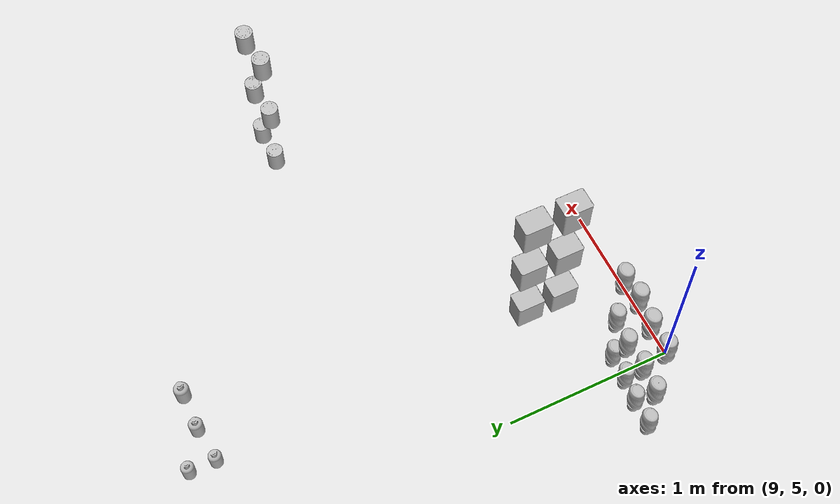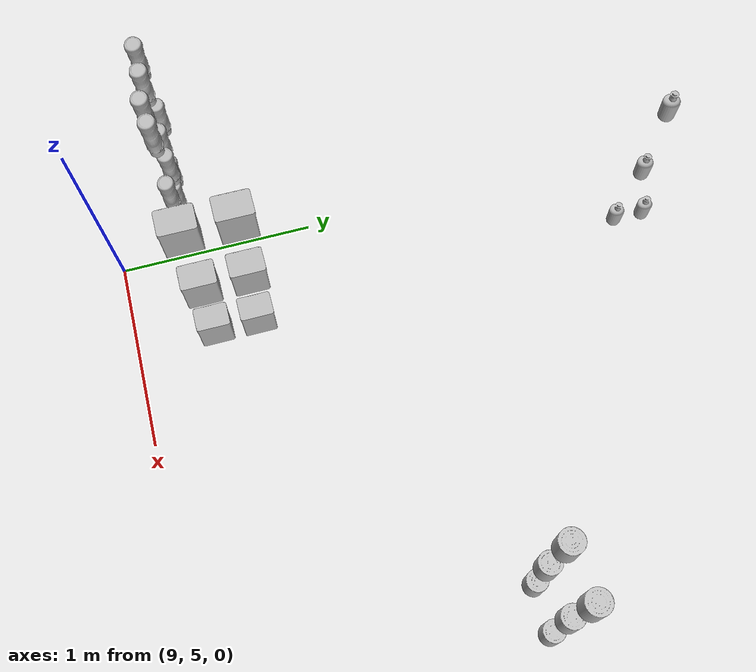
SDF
<sdf version="1.6">
 <world name="default">
  <model name="ketchup">
   <link name="link_2">
    <inertial>
     <mass>1</mass>
     <inertia>
      <ixx>0.166667</ixx>
      <ixy>0</ixy>
      <ixz>0</ixz>
      <iyy>0.166667</iyy>
      <iyz>0</iyz>
      <izz>0.166667</izz>
     </inertia>
    </inertial>
    <visual name="visual">
     <geometry><mesh><uri>model://ketchup/meshes/ketchup.dae</uri><scale>1.2 1.2 1.2</scale></mesh></geometry>
    </visual>
    <collision name="collision">
     <geometry><mesh><uri>model://ketchup/meshes/ketchup.dae</uri><scale>1.2 1.2 1.2</scale></mesh></geometry>
     <surface>
      <friction>
       <ode><mu>1</mu><mu2>1</mu2><fdir1>0 0 0</fdir1><slip1>0</slip1><slip2>0</slip2></ode>
       <torsional>
        <coefficient>1</coefficient>
        <patch_radius>0</patch_radius>
        <surface_radius>0</surface_radius>
        <use_patch_radius>1</use_patch_radius>
        <ode><slip>0</slip></ode>
       </torsional>
      </friction>
      <bounce><restitution_coefficient>0</restitution_coefficient><threshold>1e+06</threshold></bounce>
      <contact>
       <collide_without_contact>0</collide_without_contact>
       <collide_without_contact_bitmask>1</collide_without_contact_bitmask>
       <collide_bitmask>1</collide_bitmask>
       <ode>
        <soft_cfm>0</soft_cfm>
        <soft_erp>0.2</soft_erp>
        <kp>1e+13</kp>
        <kd>1</kd>
        <max_vel>0.01</max_vel>
        <min_depth>0</min_depth>
       </ode>
       <bullet>
        <split_impulse>1</split_impulse>
        <split_impulse_penetration_threshold>-0.01</split_impulse_penetration_threshold>
        <soft_cfm>0</soft_cfm>
        <soft_erp>0.2</soft_erp>
        <kp>1e+13</kp>
        <kd>1</kd>
       </bullet>
      </contact>
     </surface>
    </collision>
   </link>
   <static>1</static>
   <pose>9.04489 5.34478 0.101668 0 -0 0</pose>
  </model>
  <model name="ketchup_clone">
   <link name="link_2">
    <inertial>
     <mass>1</mass>
     <inertia>
      <ixx>0.166667</ixx>
      <ixy>0</ixy>
      <ixz>0</ixz>
      <iyy>0.166667</iyy>
      <iyz>0</iyz>
      <izz>0.166667</izz>
     </inertia>
    </inertial>
    <visual name="visual">
     <geometry><mesh><uri>model://ketchup/meshes/ketchup.dae</uri><scale>1.2 1.2 1.2</scale></mesh></geometry>
    </visual>
    <collision name="collision">
     <geometry><mesh><uri>model://ketchup/meshes/ketchup.dae</uri><scale>1.2 1.2 1.2</scale></mesh></geometry>
     <surface>
      <friction>
       <ode><mu>1</mu><mu2>1</mu2><fdir1>0 0 0</fdir1><slip1>0</slip1><slip2>0</slip2></ode>
       <torsional>
        <coefficient>1</coefficient>
        <patch_radius>0</patch_radius>
        <surface_radius>0</surface_radius>
        <use_patch_radius>1</use_patch_radius>
        <ode><slip>0</slip></ode>
       </torsional>
      </friction>
      <bounce><restitution_coefficient>0</restitution_coefficient><threshold>1e+06</threshold></bounce>
      <contact>
       <collide_without_contact>0</collide_without_contact>
       <collide_without_contact_bitmask>1</collide_without_contact_bitmask>
       <collide_bitmask>1</collide_bitmask>
       <ode>
        <soft_cfm>0</soft_cfm>
        <soft_erp>0.2</soft_erp>
        <kp>1e+13</kp>
        <kd>1</kd>
        <max_vel>0.01</max_vel>
        <min_depth>0</min_depth>
       </ode>
       <bullet>
        <split_impulse>1</split_impulse>
        <split_impulse_penetration_threshold>-0.01</split_impulse_penetration_threshold>
        <soft_cfm>0</soft_cfm>
        <soft_erp>0.2</soft_erp>
        <kp>1e+13</kp>
        <kd>1</kd>
       </bullet>
      </contact>
     </surface>
    </collision>
   </link>
   <static>1</static>
   <pose>8.89806 5.35298 0.101668 0 -0 0</pose>
  </model>
  <model name="ketchup_clone_0">
   <link name="link_2">
    <inertial>
     <mass>1</mass>
     <inertia>
      <ixx>0.166667</ixx>
      <ixy>0</ixy>
      <ixz>0</ixz>
      <iyy>0.166667</iyy>
      <iyz>0</iyz>
      <izz>0.166667</izz>
     </inertia>
    </inertial>
    <visual name="visual">
     <geometry><mesh><uri>model://ketchup/meshes/ketchup.dae</uri><scale>1.2 1.2 1.2</scale></mesh></geometry>
    </visual>
    <collision name="collision">
     <geometry><mesh><uri>model://ketchup/meshes/ketchup.dae</uri><scale>1.2 1.2 1.2</scale></mesh></geometry>
     <surface>
      <friction>
       <ode><mu>1</mu><mu2>1</mu2><fdir1>0 0 0</fdir1><slip1>0</slip1><slip2>0</slip2></ode>
       <torsional>
        <coefficient>1</coefficient>
        <patch_radius>0</patch_radius>
        <surface_radius>0</surface_radius>
        <use_patch_radius>1</use_patch_radius>
        <ode><slip>0</slip></ode>
       </torsional>
      </friction>
      <bounce><restitution_coefficient>0</restitution_coefficient><threshold>1e+06</threshold></bounce>
      <contact>
       <collide_without_contact>0</collide_without_contact>
       <collide_without_contact_bitmask>1</collide_without_contact_bitmask>
       <collide_bitmask>1</collide_bitmask>
       <ode>
        <soft_cfm>0</soft_cfm>
        <soft_erp>0.2</soft_erp>
        <kp>1e+13</kp>
        <kd>1</kd>
        <max_vel>0.01</max_vel>
        <min_depth>0</min_depth>
       </ode>
       <bullet>
        <split_impulse>1</split_impulse>
        <split_impulse_penetration_threshold>-0.01</split_impulse_penetration_threshold>
        <soft_cfm>0</soft_cfm>
        <soft_erp>0.2</soft_erp>
        <kp>1e+13</kp>
        <kd>1</kd>
       </bullet>
      </contact>
     </surface>
    </collision>
   </link>
   <static>1</static>
   <pose>8.75892 5.3715 0.101668 0 -0 0</pose>
  </model>
  <model name="ketchup_clone_1">
   <link name="link_2">
    <inertial>
     <mass>1</mass>
     <inertia>
      <ixx>0.166667</ixx>
      <ixy>0</ixy>
      <ixz>0</ixz>
      <iyy>0.166667</iyy>
      <iyz>0</iyz>
      <izz>0.166667</izz>
     </inertia>
    </inertial>
    <visual name="visual">
     <geometry><mesh><uri>model://ketchup/meshes/ketchup.dae</uri><scale>1.2 1.2 1.2</scale></mesh></geometry>
    </visual>
    <collision name="collision">
     <geometry><mesh><uri>model://ketchup/meshes/ketchup.dae</uri><scale>1.2 1.2 1.2</scale></mesh></geometry>
     <surface>
      <friction>
       <ode><mu>1</mu><mu2>1</mu2><fdir1>0 0 0</fdir1><slip1>0</slip1><slip2>0</slip2></ode>
       <torsional>
        <coefficient>1</coefficient>
        <patch_radius>0</patch_radius>
        <surface_radius>0</surface_radius>
        <use_patch_radius>1</use_patch_radius>
        <ode><slip>0</slip></ode>
       </torsional>
      </friction>
      <bounce><restitution_coefficient>0</restitution_coefficient><threshold>1e+06</threshold></bounce>
      <contact>
       <collide_without_contact>0</collide_without_contact>
       <collide_without_contact_bitmask>1</collide_without_contact_bitmask>
       <collide_bitmask>1</collide_bitmask>
       <ode>
        <soft_cfm>0</soft_cfm>
        <soft_erp>0.2</soft_erp>
        <kp>1e+13</kp>
        <kd>1</kd>
        <max_vel>0.01</max_vel>
        <min_depth>0</min_depth>
       </ode>
       <bullet>
        <split_impulse>1</split_impulse>
        <split_impulse_penetration_threshold>-0.01</split_impulse_penetration_threshold>
        <soft_cfm>0</soft_cfm>
        <soft_erp>0.2</soft_erp>
        <kp>1e+13</kp>
        <kd>1</kd>
       </bullet>
      </contact>
     </surface>
    </collision>
   </link>
   <static>1</static>
   <pose>8.60897 5.37754 0.101668 0 -0 0</pose>
  </model>
  <model name="ketchup_clone_2">
   <link name="link_2">
    <inertial>
     <mass>1</mass>
     <inertia>
      <ixx>0.166667</ixx>
      <ixy>0</ixy>
      <ixz>0</ixz>
      <iyy>0.166667</iyy>
      <iyz>0</iyz>
      <izz>0.166667</izz>
     </inertia>
    </inertial>
    <visual name="visual">
     <geometry><mesh><uri>model://ketchup/meshes/ketchup.dae</uri><scale>1.2 1.2 1.2</scale></mesh></geometry>
    </visual>
    <collision name="collision">
     <geometry><mesh><uri>model://ketchup/meshes/ketchup.dae</uri><scale>1.2 1.2 1.2</scale></mesh></geometry>
     <surface>
      <friction>
       <ode><mu>1</mu><mu2>1</mu2><fdir1>0 0 0</fdir1><slip1>0</slip1><slip2>0</slip2></ode>
       <torsional>
        <coefficient>1</coefficient>
        <patch_radius>0</patch_radius>
        <surface_radius>0</surface_radius>
        <use_patch_radius>1</use_patch_radius>
        <ode><slip>0</slip></ode>
       </torsional>
      </friction>
      <bounce><restitution_coefficient>0</restitution_coefficient><threshold>1e+06</threshold></bounce>
      <contact>
       <collide_without_contact>0</collide_without_contact>
       <collide_without_contact_bitmask>1</collide_without_contact_bitmask>
       <collide_bitmask>1</collide_bitmask>
       <ode>
        <soft_cfm>0</soft_cfm>
        <soft_erp>0.2</soft_erp>
        <kp>1e+13</kp>
        <kd>1</kd>
        <max_vel>0.01</max_vel>
        <min_depth>0</min_depth>
       </ode>
       <bullet>
        <split_impulse>1</split_impulse>
        <split_impulse_penetration_threshold>-0.01</split_impulse_penetration_threshold>
        <soft_cfm>0</soft_cfm>
        <soft_erp>0.2</soft_erp>
        <kp>1e+13</kp>
        <kd>1</kd>
       </bullet>
      </contact>
     </surface>
    </collision>
   </link>
   <static>1</static>
   <pose>9.05584 5.3791 0.539656 0 -0 0</pose>
  </model>
  <model name="ketchup_clone_2_clone">
   <link name="link_2">
    <inertial>
     <mass>1</mass>
     <inertia>
      <ixx>0.166667</ixx>
      <ixy>0</ixy>
      <ixz>0</ixz>
      <iyy>0.166667</iyy>
      <iyz>0</iyz>
      <izz>0.166667</izz>
     </inertia>
    </inertial>
    <visual name="visual">
     <geometry><mesh><uri>model://ketchup/meshes/ketchup.dae</uri><scale>1.2 1.2 1.2</scale></mesh></geometry>
    </visual>
    <collision name="collision">
     <geometry><mesh><uri>model://ketchup/meshes/ketchup.dae</uri><scale>1.2 1.2 1.2</scale></mesh></geometry>
     <surface>
      <friction>
       <ode><mu>1</mu><mu2>1</mu2><fdir1>0 0 0</fdir1><slip1>0</slip1><slip2>0</slip2></ode>
       <torsional>
        <coefficient>1</coefficient>
        <patch_radius>0</patch_radius>
        <surface_radius>0</surface_radius>
        <use_patch_radius>1</use_patch_radius>
        <ode><slip>0</slip></ode>
       </torsional>
      </friction>
      <bounce><restitution_coefficient>0</restitution_coefficient><threshold>1e+06</threshold></bounce>
      <contact>
       <collide_without_contact>0</collide_without_contact>
       <collide_without_contact_bitmask>1</collide_without_contact_bitmask>
       <collide_bitmask>1</collide_bitmask>
       <ode>
        <soft_cfm>0</soft_cfm>
        <soft_erp>0.2</soft_erp>
        <kp>1e+13</kp>
        <kd>1</kd>
        <max_vel>0.01</max_vel>
        <min_depth>0</min_depth>
       </ode>
       <bullet>
        <split_impulse>1</split_impulse>
        <split_impulse_penetration_threshold>-0.01</split_impulse_penetration_threshold>
        <soft_cfm>0</soft_cfm>
        <soft_erp>0.2</soft_erp>
        <kp>1e+13</kp>
        <kd>1</kd>
       </bullet>
      </contact>
     </surface>
    </collision>
   </link>
   <static>1</static>
   <pose>8.90333 5.40256 0.539656 0 -0 0</pose>
  </model>
  <model name="ketchup_clone_2_clone_0">
   <link name="link_2">
    <inertial>
     <mass>1</mass>
     <inertia>
      <ixx>0.166667</ixx>
      <ixy>0</ixy>
      <ixz>0</ixz>
      <iyy>0.166667</iyy>
      <iyz>0</iyz>
      <izz>0.166667</izz>
     </inertia>
    </inertial>
    <visual name="visual">
     <geometry><mesh><uri>model://ketchup/meshes/ketchup.dae</uri><scale>1.2 1.2 1.2</scale></mesh></geometry>
    </visual>
    <collision name="collision">
     <geometry><mesh><uri>model://ketchup/meshes/ketchup.dae</uri><scale>1.2 1.2 1.2</scale></mesh></geometry>
     <surface>
      <friction>
       <ode><mu>1</mu><mu2>1</mu2><fdir1>0 0 0</fdir1><slip1>0</slip1><slip2>0</slip2></ode>
       <torsional>
        <coefficient>1</coefficient>
        <patch_radius>0</patch_radius>
        <surface_radius>0</surface_radius>
        <use_patch_radius>1</use_patch_radius>
        <ode><slip>0</slip></ode>
       </torsional>
      </friction>
      <bounce><restitution_coefficient>0</restitution_coefficient><threshold>1e+06</threshold></bounce>
      <contact>
       <collide_without_contact>0</collide_without_contact>
       <collide_without_contact_bitmask>1</collide_without_contact_bitmask>
       <collide_bitmask>1</collide_bitmask>
       <ode>
        <soft_cfm>0</soft_cfm>
        <soft_erp>0.2</soft_erp>
        <kp>1e+13</kp>
        <kd>1</kd>
        <max_vel>0.01</max_vel>
        <min_depth>0</min_depth>
       </ode>
       <bullet>
        <split_impulse>1</split_impulse>
        <split_impulse_penetration_threshold>-0.01</split_impulse_penetration_threshold>
        <soft_cfm>0</soft_cfm>
        <soft_erp>0.2</soft_erp>
        <kp>1e+13</kp>
        <kd>1</kd>
       </bullet>
      </contact>
     </surface>
    </collision>
   </link>
   <static>1</static>
   <pose>8.75516 5.39467 0.539656 0 -0 0</pose>
  </model>
  <model name="ketchup_clone_2_clone_1">
   <link name="link_2">
    <inertial>
     <mass>1</mass>
     <inertia>
      <ixx>0.166667</ixx>
      <ixy>0</ixy>
      <ixz>0</ixz>
      <iyy>0.166667</iyy>
      <iyz>0</iyz>
      <izz>0.166667</izz>
     </inertia>
    </inertial>
    <visual name="visual">
     <geometry><mesh><uri>model://ketchup/meshes/ketchup.dae</uri><scale>1.2 1.2 1.2</scale></mesh></geometry>
    </visual>
    <collision name="collision">
     <geometry><mesh><uri>model://ketchup/meshes/ketchup.dae</uri><scale>1.2 1.2 1.2</scale></mesh></geometry>
     <surface>
      <friction>
       <ode><mu>1</mu><mu2>1</mu2><fdir1>0 0 0</fdir1><slip1>0</slip1><slip2>0</slip2></ode>
       <torsional>
        <coefficient>1</coefficient>
        <patch_radius>0</patch_radius>
        <surface_radius>0</surface_radius>
        <use_patch_radius>1</use_patch_radius>
        <ode><slip>0</slip></ode>
       </torsional>
      </friction>
      <bounce><restitution_coefficient>0</restitution_coefficient><threshold>1e+06</threshold></bounce>
      <contact>
       <collide_without_contact>0</collide_without_contact>
       <collide_without_contact_bitmask>1</collide_without_contact_bitmask>
       <collide_bitmask>1</collide_bitmask>
       <ode>
        <soft_cfm>0</soft_cfm>
        <soft_erp>0.2</soft_erp>
        <kp>1e+13</kp>
        <kd>1</kd>
        <max_vel>0.01</max_vel>
        <min_depth>0</min_depth>
       </ode>
       <bullet>
        <split_impulse>1</split_impulse>
        <split_impulse_penetration_threshold>-0.01</split_impulse_penetration_threshold>
        <soft_cfm>0</soft_cfm>
        <soft_erp>0.2</soft_erp>
        <kp>1e+13</kp>
        <kd>1</kd>
       </bullet>
      </contact>
     </surface>
    </collision>
   </link>
   <static>1</static>
   <pose>8.6079 5.40989 0.539656 0 -0 0</pose>
  </model>
  <model name="ketchup_clone_2_clone_2">
   <link name="link_2">
    <inertial>
     <mass>1</mass>
     <inertia>
      <ixx>0.166667</ixx>
      <ixy>0</ixy>
      <ixz>0</ixz>
      <iyy>0.166667</iyy>
      <iyz>0</iyz>
      <izz>0.166667</izz>
     </inertia>
    </inertial>
    <visual name="visual">
     <geometry><mesh><uri>model://ketchup/meshes/ketchup.dae</uri><scale>1.2 1.2 1.2</scale></mesh></geometry>
    </visual>
    <collision name="collision">
     <geometry><mesh><uri>model://ketchup/meshes/ketchup.dae</uri><scale>1.2 1.2 1.2</scale></mesh></geometry>
     <surface>
      <friction>
       <ode><mu>1</mu><mu2>1</mu2><fdir1>0 0 0</fdir1><slip1>0</slip1><slip2>0</slip2></ode>
       <torsional>
        <coefficient>1</coefficient>
        <patch_radius>0</patch_radius>
        <surface_radius>0</surface_radius>
        <use_patch_radius>1</use_patch_radius>
        <ode><slip>0</slip></ode>
       </torsional>
      </friction>
      <bounce><restitution_coefficient>0</restitution_coefficient><threshold>1e+06</threshold></bounce>
      <contact>
       <collide_without_contact>0</collide_without_contact>
       <collide_without_contact_bitmask>1</collide_without_contact_bitmask>
       <collide_bitmask>1</collide_bitmask>
       <ode>
        <soft_cfm>0</soft_cfm>
        <soft_erp>0.2</soft_erp>
        <kp>1e+13</kp>
        <kd>1</kd>
        <max_vel>0.01</max_vel>
        <min_depth>0</min_depth>
       </ode>
       <bullet>
        <split_impulse>1</split_impulse>
        <split_impulse_penetration_threshold>-0.01</split_impulse_penetration_threshold>
        <soft_cfm>0</soft_cfm>
        <soft_erp>0.2</soft_erp>
        <kp>1e+13</kp>
        <kd>1</kd>
       </bullet>
      </contact>
     </surface>
    </collision>
   </link>
   <static>1</static>
   <pose>9.05708 5.3979 0.975852 0 -0 0</pose>
  </model>
  <model name="ketchup_clone_2_clone_2_clone">
   <link name="link_2">
    <inertial>
     <mass>1</mass>
     <inertia>
      <ixx>0.166667</ixx>
      <ixy>0</ixy>
      <ixz>0</ixz>
      <iyy>0.166667</iyy>
      <iyz>0</iyz>
      <izz>0.166667</izz>
     </inertia>
    </inertial>
    <visual name="visual">
     <geometry><mesh><uri>model://ketchup/meshes/ketchup.dae</uri><scale>1.2 1.2 1.2</scale></mesh></geometry>
    </visual>
    <collision name="collision">
     <geometry><mesh><uri>model://ketchup/meshes/ketchup.dae</uri><scale>1.2 1.2 1.2</scale></mesh></geometry>
     <surface>
      <friction>
       <ode><mu>1</mu><mu2>1</mu2><fdir1>0 0 0</fdir1><slip1>0</slip1><slip2>0</slip2></ode>
       <torsional>
        <coefficient>1</coefficient>
        <patch_radius>0</patch_radius>
        <surface_radius>0</surface_radius>
        <use_patch_radius>1</use_patch_radius>
        <ode><slip>0</slip></ode>
       </torsional>
      </friction>
      <bounce><restitution_coefficient>0</restitution_coefficient><threshold>1e+06</threshold></bounce>
      <contact>
       <collide_without_contact>0</collide_without_contact>
       <collide_without_contact_bitmask>1</collide_without_contact_bitmask>
       <collide_bitmask>1</collide_bitmask>
       <ode>
        <soft_cfm>0</soft_cfm>
        <soft_erp>0.2</soft_erp>
        <kp>1e+13</kp>
        <kd>1</kd>
        <max_vel>0.01</max_vel>
        <min_depth>0</min_depth>
       </ode>
       <bullet>
        <split_impulse>1</split_impulse>
        <split_impulse_penetration_threshold>-0.01</split_impulse_penetration_threshold>
        <soft_cfm>0</soft_cfm>
        <soft_erp>0.2</soft_erp>
        <kp>1e+13</kp>
        <kd>1</kd>
       </bullet>
      </contact>
     </surface>
    </collision>
   </link>
   <static>1</static>
   <pose>8.93057 5.38857 0.975852 0 -0 0</pose>
  </model>
  <model name="ketchup_clone_2_clone_2_clone_0">
   <link name="link_2">
    <inertial>
     <mass>1</mass>
     <inertia>
      <ixx>0.166667</ixx>
      <ixy>0</ixy>
      <ixz>0</ixz>
      <iyy>0.166667</iyy>
      <iyz>0</iyz>
      <izz>0.166667</izz>
     </inertia>
    </inertial>
    <visual name="visual">
     <geometry><mesh><uri>model://ketchup/meshes/ketchup.dae</uri><scale>1.2 1.2 1.2</scale></mesh></geometry>
    </visual>
    <collision name="collision">
     <geometry><mesh><uri>model://ketchup/meshes/ketchup.dae</uri><scale>1.2 1.2 1.2</scale></mesh></geometry>
     <surface>
      <friction>
       <ode><mu>1</mu><mu2>1</mu2><fdir1>0 0 0</fdir1><slip1>0</slip1><slip2>0</slip2></ode>
       <torsional>
        <coefficient>1</coefficient>
        <patch_radius>0</patch_radius>
        <surface_radius>0</surface_radius>
        <use_patch_radius>1</use_patch_radius>
        <ode><slip>0</slip></ode>
       </torsional>
      </friction>
      <bounce><restitution_coefficient>0</restitution_coefficient><threshold>1e+06</threshold></bounce>
      <contact>
       <collide_without_contact>0</collide_without_contact>
       <collide_without_contact_bitmask>1</collide_without_contact_bitmask>
       <collide_bitmask>1</collide_bitmask>
       <ode>
        <soft_cfm>0</soft_cfm>
        <soft_erp>0.2</soft_erp>
        <kp>1e+13</kp>
        <kd>1</kd>
        <max_vel>0.01</max_vel>
        <min_depth>0</min_depth>
       </ode>
       <bullet>
        <split_impulse>1</split_impulse>
        <split_impulse_penetration_threshold>-0.01</split_impulse_penetration_threshold>
        <soft_cfm>0</soft_cfm>
        <soft_erp>0.2</soft_erp>
        <kp>1e+13</kp>
        <kd>1</kd>
       </bullet>
      </contact>
     </surface>
    </collision>
   </link>
   <static>1</static>
   <pose>8.78217 5.40767 0.975852 0 -0 0</pose>
  </model>
  <model name="ketchup_clone_2_clone_2_clone_1">
   <link name="link_2">
    <inertial>
     <mass>1</mass>
     <inertia>
      <ixx>0.166667</ixx>
      <ixy>0</ixy>
      <ixz>0</ixz>
      <iyy>0.166667</iyy>
      <iyz>0</iyz>
      <izz>0.166667</izz>
     </inertia>
    </inertial>
    <visual name="visual">
     <geometry><mesh><uri>model://ketchup/meshes/ketchup.dae</uri><scale>1.2 1.2 1.2</scale></mesh></geometry>
    </visual>
    <collision name="collision">
     <geometry><mesh><uri>model://ketchup/meshes/ketchup.dae</uri><scale>1.2 1.2 1.2</scale></mesh></geometry>
     <surface>
      <friction>
       <ode><mu>1</mu><mu2>1</mu2><fdir1>0 0 0</fdir1><slip1>0</slip1><slip2>0</slip2></ode>
       <torsional>
        <coefficient>1</coefficient>
        <patch_radius>0</patch_radius>
        <surface_radius>0</surface_radius>
        <use_patch_radius>1</use_patch_radius>
        <ode><slip>0</slip></ode>
       </torsional>
      </friction>
      <bounce><restitution_coefficient>0</restitution_coefficient><threshold>1e+06</threshold></bounce>
      <contact>
       <collide_without_contact>0</collide_without_contact>
       <collide_without_contact_bitmask>1</collide_without_contact_bitmask>
       <collide_bitmask>1</collide_bitmask>
       <ode>
        <soft_cfm>0</soft_cfm>
        <soft_erp>0.2</soft_erp>
        <kp>1e+13</kp>
        <kd>1</kd>
        <max_vel>0.01</max_vel>
        <min_depth>0</min_depth>
       </ode>
       <bullet>
        <split_impulse>1</split_impulse>
        <split_impulse_penetration_threshold>-0.01</split_impulse_penetration_threshold>
        <soft_cfm>0</soft_cfm>
        <soft_erp>0.2</soft_erp>
        <kp>1e+13</kp>
        <kd>1</kd>
       </bullet>
      </contact>
     </surface>
    </collision>
   </link>
   <static>1</static>
   <pose>8.63574 5.40934 0.975852 0 -0 0</pose>
  </model>
  <model name="cocoa">
   <link name="link_0">
    <inertial>
     <mass>1</mass>
     <inertia>
      <ixx>0.166667</ixx>
      <ixy>0</ixy>
      <ixz>0</ixz>
      <iyy>0.166667</iyy>
      <iyz>0</iyz>
      <izz>0.166667</izz>
     </inertia>
    </inertial>
    <visual name="visual">
     <geometry><mesh><uri>model://cocoa/meshes/cocoa.dae</uri><scale>1 1 1</scale></mesh></geometry>
    </visual>
    <collision name="collision">
     <geometry><mesh><uri>model://cocoa/meshes/cocoa.dae</uri><scale>1 1 1</scale></mesh></geometry>
     <surface>
      <friction>
       <ode><mu>1</mu><mu2>1</mu2><fdir1>0 0 0</fdir1><slip1>0</slip1><slip2>0</slip2></ode>
       <torsional>
        <coefficient>1</coefficient>
        <patch_radius>0</patch_radius>
        <surface_radius>0</surface_radius>
        <use_patch_radius>1</use_patch_radius>
        <ode><slip>0</slip></ode>
       </torsional>
      </friction>
      <bounce><restitution_coefficient>0</restitution_coefficient><threshold>1e+06</threshold></bounce>
      <contact>
       <collide_without_contact>0</collide_without_contact>
       <collide_without_contact_bitmask>1</collide_without_contact_bitmask>
       <collide_bitmask>1</collide_bitmask>
       <ode>
        <soft_cfm>0</soft_cfm>
        <soft_erp>0.2</soft_erp>
        <kp>1e+13</kp>
        <kd>1</kd>
        <max_vel>0.01</max_vel>
        <min_depth>0</min_depth>
       </ode>
       <bullet>
        <split_impulse>1</split_impulse>
        <split_impulse_penetration_threshold>-0.01</split_impulse_penetration_threshold>
        <soft_cfm>0</soft_cfm>
        <soft_erp>0.2</soft_erp>
        <kp>1e+13</kp>
        <kd>1</kd>
       </bullet>
      </contact>
     </surface>
    </collision>
   </link>
   <static>1</static>
   <pose>9.58144 5.33418 0.099729 0 -0 1.57282</pose>
  </model>
  <model name="cocoa_clone">
   <link name="link_0">
    <inertial>
     <mass>1</mass>
     <inertia>
      <ixx>0.166667</ixx>
      <ixy>0</ixy>
      <ixz>0</ixz>
      <iyy>0.166667</iyy>
      <iyz>0</iyz>
      <izz>0.166667</izz>
     </inertia>
    </inertial>
    <visual name="visual">
     <geometry><mesh><uri>model://cocoa/meshes/cocoa.dae</uri><scale>1 1 1</scale></mesh></geometry>
    </visual>
    <collision name="collision">
     <geometry><mesh><uri>model://cocoa/meshes/cocoa.dae</uri><scale>1 1 1</scale></mesh></geometry>
     <surface>
      <friction>
       <ode><mu>1</mu><mu2>1</mu2><fdir1>0 0 0</fdir1><slip1>0</slip1><slip2>0</slip2></ode>
       <torsional>
        <coefficient>1</coefficient>
        <patch_radius>0</patch_radius>
        <surface_radius>0</surface_radius>
        <use_patch_radius>1</use_patch_radius>
        <ode><slip>0</slip></ode>
       </torsional>
      </friction>
      <bounce><restitution_coefficient>0</restitution_coefficient><threshold>1e+06</threshold></bounce>
      <contact>
       <collide_without_contact>0</collide_without_contact>
       <collide_without_contact_bitmask>1</collide_without_contact_bitmask>
       <collide_bitmask>1</collide_bitmask>
       <ode>
        <soft_cfm>0</soft_cfm>
        <soft_erp>0.2</soft_erp>
        <kp>1e+13</kp>
        <kd>1</kd>
        <max_vel>0.01</max_vel>
        <min_depth>0</min_depth>
       </ode>
       <bullet>
        <split_impulse>1</split_impulse>
        <split_impulse_penetration_threshold>-0.01</split_impulse_penetration_threshold>
        <soft_cfm>0</soft_cfm>
        <soft_erp>0.2</soft_erp>
        <kp>1e+13</kp>
        <kd>1</kd>
       </bullet>
      </contact>
     </surface>
    </collision>
   </link>
   <static>1</static>
   <pose>9.58308 5.54919 0.101324 0 -0 1.57282</pose>
  </model>
  <model name="cocoa_clone_0">
   <link name="link_0">
    <inertial>
     <mass>1</mass>
     <inertia>
      <ixx>0.166667</ixx>
      <ixy>0</ixy>
      <ixz>0</ixz>
      <iyy>0.166667</iyy>
      <iyz>0</iyz>
      <izz>0.166667</izz>
     </inertia>
    </inertial>
    <visual name="visual">
     <geometry><mesh><uri>model://cocoa/meshes/cocoa.dae</uri><scale>1 1 1</scale></mesh></geometry>
    </visual>
    <collision name="collision">
     <geometry><mesh><uri>model://cocoa/meshes/cocoa.dae</uri><scale>1 1 1</scale></mesh></geometry>
     <surface>
      <friction>
       <ode><mu>1</mu><mu2>1</mu2><fdir1>0 0 0</fdir1><slip1>0</slip1><slip2>0</slip2></ode>
       <torsional>
        <coefficient>1</coefficient>
        <patch_radius>0</patch_radius>
        <surface_radius>0</surface_radius>
        <use_patch_radius>1</use_patch_radius>
        <ode><slip>0</slip></ode>
       </torsional>
      </friction>
      <bounce><restitution_coefficient>0</restitution_coefficient><threshold>1e+06</threshold></bounce>
      <contact>
       <collide_without_contact>0</collide_without_contact>
       <collide_without_contact_bitmask>1</collide_without_contact_bitmask>
       <collide_bitmask>1</collide_bitmask>
       <ode>
        <soft_cfm>0</soft_cfm>
        <soft_erp>0.2</soft_erp>
        <kp>1e+13</kp>
        <kd>1</kd>
        <max_vel>0.01</max_vel>
        <min_depth>0</min_depth>
       </ode>
       <bullet>
        <split_impulse>1</split_impulse>
        <split_impulse_penetration_threshold>-0.01</split_impulse_penetration_threshold>
        <soft_cfm>0</soft_cfm>
        <soft_erp>0.2</soft_erp>
        <kp>1e+13</kp>
        <kd>1</kd>
       </bullet>
      </contact>
     </surface>
    </collision>
   </link>
   <static>1</static>
   <pose>9.58715 5.34555 0.528717 0 -0 1.57282</pose>
  </model>
  <model name="cocoa_clone_0_clone">
   <link name="link_0">
    <inertial>
     <mass>1</mass>
     <inertia>
      <ixx>0.166667</ixx>
      <ixy>0</ixy>
      <ixz>0</ixz>
      <iyy>0.166667</iyy>
      <iyz>0</iyz>
      <izz>0.166667</izz>
     </inertia>
    </inertial>
    <visual name="visual">
     <geometry><mesh><uri>model://cocoa/meshes/cocoa.dae</uri><scale>1 1 1</scale></mesh></geometry>
    </visual>
    <collision name="collision">
     <geometry><mesh><uri>model://cocoa/meshes/cocoa.dae</uri><scale>1 1 1</scale></mesh></geometry>
     <surface>
      <friction>
       <ode><mu>1</mu><mu2>1</mu2><fdir1>0 0 0</fdir1><slip1>0</slip1><slip2>0</slip2></ode>
       <torsional>
        <coefficient>1</coefficient>
        <patch_radius>0</patch_radius>
        <surface_radius>0</surface_radius>
        <use_patch_radius>1</use_patch_radius>
        <ode><slip>0</slip></ode>
       </torsional>
      </friction>
      <bounce><restitution_coefficient>0</restitution_coefficient><threshold>1e+06</threshold></bounce>
      <contact>
       <collide_without_contact>0</collide_without_contact>
       <collide_without_contact_bitmask>1</collide_without_contact_bitmask>
       <collide_bitmask>1</collide_bitmask>
       <ode>
        <soft_cfm>0</soft_cfm>
        <soft_erp>0.2</soft_erp>
        <kp>1e+13</kp>
        <kd>1</kd>
        <max_vel>0.01</max_vel>
        <min_depth>0</min_depth>
       </ode>
       <bullet>
        <split_impulse>1</split_impulse>
        <split_impulse_penetration_threshold>-0.01</split_impulse_penetration_threshold>
        <soft_cfm>0</soft_cfm>
        <soft_erp>0.2</soft_erp>
        <kp>1e+13</kp>
        <kd>1</kd>
       </bullet>
      </contact>
     </surface>
    </collision>
   </link>
   <static>1</static>
   <pose>9.58377 5.56516 0.528717 0 -0 1.57282</pose>
  </model>
  <model name="cocoa_clone_0_clone_0">
   <link name="link_0">
    <inertial>
     <mass>1</mass>
     <inertia>
      <ixx>0.166667</ixx>
      <ixy>0</ixy>
      <ixz>0</ixz>
      <iyy>0.166667</iyy>
      <iyz>0</iyz>
      <izz>0.166667</izz>
     </inertia>
    </inertial>
    <visual name="visual">
     <geometry><mesh><uri>model://cocoa/meshes/cocoa.dae</uri><scale>1 1 1</scale></mesh></geometry>
    </visual>
    <collision name="collision">
     <geometry><mesh><uri>model://cocoa/meshes/cocoa.dae</uri><scale>1 1 1</scale></mesh></geometry>
     <surface>
      <friction>
       <ode><mu>1</mu><mu2>1</mu2><fdir1>0 0 0</fdir1><slip1>0</slip1><slip2>0</slip2></ode>
       <torsional>
        <coefficient>1</coefficient>
        <patch_radius>0</patch_radius>
        <surface_radius>0</surface_radius>
        <use_patch_radius>1</use_patch_radius>
        <ode><slip>0</slip></ode>
       </torsional>
      </friction>
      <bounce><restitution_coefficient>0</restitution_coefficient><threshold>1e+06</threshold></bounce>
      <contact>
       <collide_without_contact>0</collide_without_contact>
       <collide_without_contact_bitmask>1</collide_without_contact_bitmask>
       <collide_bitmask>1</collide_bitmask>
       <ode>
        <soft_cfm>0</soft_cfm>
        <soft_erp>0.2</soft_erp>
        <kp>1e+13</kp>
        <kd>1</kd>
        <max_vel>0.01</max_vel>
        <min_depth>0</min_depth>
       </ode>
       <bullet>
        <split_impulse>1</split_impulse>
        <split_impulse_penetration_threshold>-0.01</split_impulse_penetration_threshold>
        <soft_cfm>0</soft_cfm>
        <soft_erp>0.2</soft_erp>
        <kp>1e+13</kp>
        <kd>1</kd>
       </bullet>
      </contact>
     </surface>
    </collision>
   </link>
   <static>1</static>
   <pose>9.57789 5.34573 0.966672 0 -0 1.57282</pose>
  </model>
  <model name="cocoa_clone_0_clone_0_clone">
   <link name="link_0">
    <inertial>
     <mass>1</mass>
     <inertia>
      <ixx>0.166667</ixx>
      <ixy>0</ixy>
      <ixz>0</ixz>
      <iyy>0.166667</iyy>
      <iyz>0</iyz>
      <izz>0.166667</izz>
     </inertia>
    </inertial>
    <visual name="visual">
     <geometry><mesh><uri>model://cocoa/meshes/cocoa.dae</uri><scale>1 1 1</scale></mesh></geometry>
    </visual>
    <collision name="collision">
     <geometry><mesh><uri>model://cocoa/meshes/cocoa.dae</uri><scale>1 1 1</scale></mesh></geometry>
     <surface>
      <friction>
       <ode><mu>1</mu><mu2>1</mu2><fdir1>0 0 0</fdir1><slip1>0</slip1><slip2>0</slip2></ode>
       <torsional>
        <coefficient>1</coefficient>
        <patch_radius>0</patch_radius>
        <surface_radius>0</surface_radius>
        <use_patch_radius>1</use_patch_radius>
        <ode><slip>0</slip></ode>
       </torsional>
      </friction>
      <bounce><restitution_coefficient>0</restitution_coefficient><threshold>1e+06</threshold></bounce>
      <contact>
       <collide_without_contact>0</collide_without_contact>
       <collide_without_contact_bitmask>1</collide_without_contact_bitmask>
       <collide_bitmask>1</collide_bitmask>
       <ode>
        <soft_cfm>0</soft_cfm>
        <soft_erp>0.2</soft_erp>
        <kp>1e+13</kp>
        <kd>1</kd>
        <max_vel>0.01</max_vel>
        <min_depth>0</min_depth>
       </ode>
       <bullet>
        <split_impulse>1</split_impulse>
        <split_impulse_penetration_threshold>-0.01</split_impulse_penetration_threshold>
        <soft_cfm>0</soft_cfm>
        <soft_erp>0.2</soft_erp>
        <kp>1e+13</kp>
        <kd>1</kd>
       </bullet>
      </contact>
     </surface>
    </collision>
   </link>
   <static>1</static>
   <pose>9.5732 5.57805 0.966672 0 -0 1.57282</pose>
  </model>
  <model name="black_pepper_clone">
   <link name="link_0">
    <inertial>
     <mass>1</mass>
     <inertia>
      <ixx>0.166667</ixx>
      <ixy>0</ixy>
      <ixz>0</ixz>
      <iyy>0.166667</iyy>
      <iyz>0</iyz>
      <izz>0.166667</izz>
     </inertia>
    </inertial>
    <visual name="visual">
     <geometry><mesh><uri>model://black_pepper/meshes/black_pepper.dae</uri><scale>1 1 1</scale></mesh></geometry>
    </visual>
    <collision name="collision">
     <geometry><mesh><uri>model://black_pepper/meshes/black_pepper.dae</uri><scale>1 1 1</scale></mesh></geometry>
     <surface>
      <friction>
       <ode><mu>1</mu><mu2>1</mu2><fdir1>0 0 0</fdir1><slip1>0</slip1><slip2>0</slip2></ode>
       <torsional>
        <coefficient>1</coefficient>
        <patch_radius>0</patch_radius>
        <surface_radius>0</surface_radius>
        <use_patch_radius>1</use_patch_radius>
        <ode><slip>0</slip></ode>
       </torsional>
      </friction>
      <bounce><restitution_coefficient>0</restitution_coefficient><threshold>1e+06</threshold></bounce>
      <contact>
       <collide_without_contact>0</collide_without_contact>
       <collide_without_contact_bitmask>1</collide_without_contact_bitmask>
       <collide_bitmask>1</collide_bitmask>
       <ode>
        <soft_cfm>0</soft_cfm>
        <soft_erp>0.2</soft_erp>
        <kp>1e+13</kp>
        <kd>1</kd>
        <max_vel>0.01</max_vel>
        <min_depth>0</min_depth>
       </ode>
       <bullet>
        <split_impulse>1</split_impulse>
        <split_impulse_penetration_threshold>-0.01</split_impulse_penetration_threshold>
        <soft_cfm>0</soft_cfm>
        <soft_erp>0.2</soft_erp>
        <kp>1e+13</kp>
        <kd>1</kd>
       </bullet>
      </contact>
     </surface>
    </collision>
   </link>
   <static>1</static>
   <pose>9.45434 7.70894 0.103642 0 -0 1.36337</pose>
  </model>
  <model name="black_pepper_clone_0">
   <link name="link_0">
    <inertial>
     <mass>1</mass>
     <inertia>
      <ixx>0.166667</ixx>
      <ixy>0</ixy>
      <ixz>0</ixz>
      <iyy>0.166667</iyy>
      <iyz>0</iyz>
      <izz>0.166667</izz>
     </inertia>
    </inertial>
    <visual name="visual">
     <geometry><mesh><uri>model://black_pepper/meshes/black_pepper.dae</uri><scale>1 1 1</scale></mesh></geometry>
    </visual>
    <collision name="collision">
     <geometry><mesh><uri>model://black_pepper/meshes/black_pepper.dae</uri><scale>1 1 1</scale></mesh></geometry>
     <surface>
      <friction>
       <ode><mu>1</mu><mu2>1</mu2><fdir1>0 0 0</fdir1><slip1>0</slip1><slip2>0</slip2></ode>
       <torsional>
        <coefficient>1</coefficient>
        <patch_radius>0</patch_radius>
        <surface_radius>0</surface_radius>
        <use_patch_radius>1</use_patch_radius>
        <ode><slip>0</slip></ode>
       </torsional>
      </friction>
      <bounce><restitution_coefficient>0</restitution_coefficient><threshold>1e+06</threshold></bounce>
      <contact>
       <collide_without_contact>0</collide_without_contact>
       <collide_without_contact_bitmask>1</collide_without_contact_bitmask>
       <collide_bitmask>1</collide_bitmask>
       <ode>
        <soft_cfm>0</soft_cfm>
        <soft_erp>0.2</soft_erp>
        <kp>1e+13</kp>
        <kd>1</kd>
        <max_vel>0.01</max_vel>
        <min_depth>0</min_depth>
       </ode>
       <bullet>
        <split_impulse>1</split_impulse>
        <split_impulse_penetration_threshold>-0.01</split_impulse_penetration_threshold>
        <soft_cfm>0</soft_cfm>
        <soft_erp>0.2</soft_erp>
        <kp>1e+13</kp>
        <kd>1</kd>
       </bullet>
      </contact>
     </surface>
    </collision>
   </link>
   <static>1</static>
   <pose>9.45175 7.55471 0.103642 0 -0 1.36337</pose>
  </model>
  <model name="black_pepper_clone_3">
   <link name="link_0">
    <inertial>
     <mass>1</mass>
     <inertia>
      <ixx>0.166667</ixx>
      <ixy>0</ixy>
      <ixz>0</ixz>
      <iyy>0.166667</iyy>
      <iyz>0</iyz>
      <izz>0.166667</izz>
     </inertia>
    </inertial>
    <visual name="visual">
     <geometry><mesh><uri>model://black_pepper/meshes/black_pepper.dae</uri><scale>1 1 1</scale></mesh></geometry>
    </visual>
    <collision name="collision">
     <geometry><mesh><uri>model://black_pepper/meshes/black_pepper.dae</uri><scale>1 1 1</scale></mesh></geometry>
     <surface>
      <friction>
       <ode><mu>1</mu><mu2>1</mu2><fdir1>0 0 0</fdir1><slip1>0</slip1><slip2>0</slip2></ode>
       <torsional>
        <coefficient>1</coefficient>
        <patch_radius>0</patch_radius>
        <surface_radius>0</surface_radius>
        <use_patch_radius>1</use_patch_radius>
        <ode><slip>0</slip></ode>
       </torsional>
      </friction>
      <bounce><restitution_coefficient>0</restitution_coefficient><threshold>1e+06</threshold></bounce>
      <contact>
       <collide_without_contact>0</collide_without_contact>
       <collide_without_contact_bitmask>1</collide_without_contact_bitmask>
       <collide_bitmask>1</collide_bitmask>
       <ode>
        <soft_cfm>0</soft_cfm>
        <soft_erp>0.2</soft_erp>
        <kp>1e+13</kp>
        <kd>1</kd>
        <max_vel>0.01</max_vel>
        <min_depth>0</min_depth>
       </ode>
       <bullet>
        <split_impulse>1</split_impulse>
        <split_impulse_penetration_threshold>-0.01</split_impulse_penetration_threshold>
        <soft_cfm>0</soft_cfm>
        <soft_erp>0.2</soft_erp>
        <kp>1e+13</kp>
        <kd>1</kd>
       </bullet>
      </contact>
     </surface>
    </collision>
   </link>
   <static>1</static>
   <pose>9.46867 7.58474 0.53513 0 -0 1.36337</pose>
  </model>
  <model name="black_pepper_clone_6">
   <link name="link_0">
    <inertial>
     <mass>1</mass>
     <inertia>
      <ixx>0.166667</ixx>
      <ixy>0</ixy>
      <ixz>0</ixz>
      <iyy>0.166667</iyy>
      <iyz>0</iyz>
      <izz>0.166667</izz>
     </inertia>
    </inertial>
    <visual name="visual">
     <geometry><mesh><uri>model://black_pepper/meshes/black_pepper.dae</uri><scale>1 1 1</scale></mesh></geometry>
    </visual>
    <collision name="collision">
     <geometry><mesh><uri>model://black_pepper/meshes/black_pepper.dae</uri><scale>1 1 1</scale></mesh></geometry>
     <surface>
      <friction>
       <ode><mu>1</mu><mu2>1</mu2><fdir1>0 0 0</fdir1><slip1>0</slip1><slip2>0</slip2></ode>
       <torsional>
        <coefficient>1</coefficient>
        <patch_radius>0</patch_radius>
        <surface_radius>0</surface_radius>
        <use_patch_radius>1</use_patch_radius>
        <ode><slip>0</slip></ode>
       </torsional>
      </friction>
      <bounce><restitution_coefficient>0</restitution_coefficient><threshold>1e+06</threshold></bounce>
      <contact>
       <collide_without_contact>0</collide_without_contact>
       <collide_without_contact_bitmask>1</collide_without_contact_bitmask>
       <collide_bitmask>1</collide_bitmask>
       <ode>
        <soft_cfm>0</soft_cfm>
        <soft_erp>0.2</soft_erp>
        <kp>1e+13</kp>
        <kd>1</kd>
        <max_vel>0.01</max_vel>
        <min_depth>0</min_depth>
       </ode>
       <bullet>
        <split_impulse>1</split_impulse>
        <split_impulse_penetration_threshold>-0.01</split_impulse_penetration_threshold>
        <soft_cfm>0</soft_cfm>
        <soft_erp>0.2</soft_erp>
        <kp>1e+13</kp>
        <kd>1</kd>
       </bullet>
      </contact>
     </surface>
    </collision>
   </link>
   <static>1</static>
   <pose>9.46325 7.58528 0.971741 0 -0 1.36337</pose>
  </model>
  <model name="corn">
   <link name="link_0">
    <inertial>
     <mass>1</mass>
     <inertia>
      <ixx>0.166667</ixx>
      <ixy>0</ixy>
      <ixz>0</ixz>
      <iyy>0.166667</iyy>
      <iyz>0</iyz>
      <izz>0.166667</izz>
     </inertia>
    </inertial>
    <pose>0 -1e-06 0 0 -0 0</pose>
    <visual name="visual">
     <geometry><mesh><uri>model://corn/meshes/corn.dae</uri><scale>0.01 0.01 0.01</scale></mesh></geometry>
    </visual>
    <collision name="collision">
     <geometry><mesh><uri>model://corn/meshes/corn.dae</uri><scale>0.01 0.01 0.01</scale></mesh></geometry>
     <surface>
      <friction>
       <ode><mu>1</mu><mu2>1</mu2><fdir1>0 0 0</fdir1><slip1>0</slip1><slip2>0</slip2></ode>
       <torsional>
        <coefficient>1</coefficient>
        <patch_radius>0</patch_radius>
        <surface_radius>0</surface_radius>
        <use_patch_radius>1</use_patch_radius>
        <ode><slip>0</slip></ode>
       </torsional>
      </friction>
      <bounce><restitution_coefficient>0</restitution_coefficient><threshold>1e+06</threshold></bounce>
      <contact>
       <collide_without_contact>0</collide_without_contact>
       <collide_without_contact_bitmask>1</collide_without_contact_bitmask>
       <collide_bitmask>1</collide_bitmask>
       <ode>
        <soft_cfm>0</soft_cfm>
        <soft_erp>0.2</soft_erp>
        <kp>1e+13</kp>
        <kd>1</kd>
        <max_vel>0.01</max_vel>
        <min_depth>0</min_depth>
       </ode>
       <bullet>
        <split_impulse>1</split_impulse>
        <split_impulse_penetration_threshold>-0.01</split_impulse_penetration_threshold>
        <soft_cfm>0</soft_cfm>
        <soft_erp>0.2</soft_erp>
        <kp>1e+13</kp>
        <kd>1</kd>
       </bullet>
      </contact>
     </surface>
    </collision>
   </link>
   <static>1</static>
   <pose>11.3422 6.52026 0.96882 0 -0 0</pose>
  </model>
  <model name="corn_clone">
   <link name="link_0">
    <inertial>
     <mass>1</mass>
     <inertia>
      <ixx>0.166667</ixx>
      <ixy>0</ixy>
      <ixz>0</ixz>
      <iyy>0.166667</iyy>
      <iyz>0</iyz>
      <izz>0.166667</izz>
     </inertia>
    </inertial>
    <pose>0 -1e-06 0 0 -0 0</pose>
    <visual name="visual">
     <geometry><mesh><uri>model://corn/meshes/corn.dae</uri><scale>0.01 0.01 0.01</scale></mesh></geometry>
    </visual>
    <collision name="collision">
     <geometry><mesh><uri>model://corn/meshes/corn.dae</uri><scale>0.01 0.01 0.01</scale></mesh></geometry>
     <surface>
      <friction>
       <ode><mu>1</mu><mu2>1</mu2><fdir1>0 0 0</fdir1><slip1>0</slip1><slip2>0</slip2></ode>
       <torsional>
        <coefficient>1</coefficient>
        <patch_radius>0</patch_radius>
        <surface_radius>0</surface_radius>
        <use_patch_radius>1</use_patch_radius>
        <ode><slip>0</slip></ode>
       </torsional>
      </friction>
      <bounce><restitution_coefficient>0</restitution_coefficient><threshold>1e+06</threshold></bounce>
      <contact>
       <collide_without_contact>0</collide_without_contact>
       <collide_without_contact_bitmask>1</collide_without_contact_bitmask>
       <collide_bitmask>1</collide_bitmask>
       <ode>
        <soft_cfm>0</soft_cfm>
        <soft_erp>0.2</soft_erp>
        <kp>1e+13</kp>
        <kd>1</kd>
        <max_vel>0.01</max_vel>
        <min_depth>0</min_depth>
       </ode>
       <bullet>
        <split_impulse>1</split_impulse>
        <split_impulse_penetration_threshold>-0.01</split_impulse_penetration_threshold>
        <soft_cfm>0</soft_cfm>
        <soft_erp>0.2</soft_erp>
        <kp>1e+13</kp>
        <kd>1</kd>
       </bullet>
      </contact>
     </surface>
    </collision>
   </link>
   <static>1</static>
   <pose>11.125 6.52084 0.103239 0 -0 0</pose>
  </model>
  <model name="corn_clone_0">
   <link name="link_0">
    <inertial>
     <mass>1</mass>
     <inertia>
      <ixx>0.166667</ixx>
      <ixy>0</ixy>
      <ixz>0</ixz>
      <iyy>0.166667</iyy>
      <iyz>0</iyz>
      <izz>0.166667</izz>
     </inertia>
    </inertial>
    <pose>0 -1e-06 0 0 -0 0</pose>
    <visual name="visual">
     <geometry><mesh><uri>model://corn/meshes/corn.dae</uri><scale>0.01 0.01 0.01</scale></mesh></geometry>
    </visual>
    <collision name="collision">
     <geometry><mesh><uri>model://corn/meshes/corn.dae</uri><scale>0.01 0.01 0.01</scale></mesh></geometry>
     <surface>
      <friction>
       <ode><mu>1</mu><mu2>1</mu2><fdir1>0 0 0</fdir1><slip1>0</slip1><slip2>0</slip2></ode>
       <torsional>
        <coefficient>1</coefficient>
        <patch_radius>0</patch_radius>
        <surface_radius>0</surface_radius>
        <use_patch_radius>1</use_patch_radius>
        <ode><slip>0</slip></ode>
       </torsional>
      </friction>
      <bounce><restitution_coefficient>0</restitution_coefficient><threshold>1e+06</threshold></bounce>
      <contact>
       <collide_without_contact>0</collide_without_contact>
       <collide_without_contact_bitmask>1</collide_without_contact_bitmask>
       <collide_bitmask>1</collide_bitmask>
       <ode>
        <soft_cfm>0</soft_cfm>
        <soft_erp>0.2</soft_erp>
        <kp>1e+13</kp>
        <kd>1</kd>
        <max_vel>0.01</max_vel>
        <min_depth>0</min_depth>
       </ode>
       <bullet>
        <split_impulse>1</split_impulse>
        <split_impulse_penetration_threshold>-0.01</split_impulse_penetration_threshold>
        <soft_cfm>0</soft_cfm>
        <soft_erp>0.2</soft_erp>
        <kp>1e+13</kp>
        <kd>1</kd>
       </bullet>
      </contact>
     </surface>
    </collision>
   </link>
   <static>1</static>
   <pose>11.3406 6.52075 0.103239 0 -0 0</pose>
  </model>
  <model name="corn_clone_1">
   <link name="link_0">
    <inertial>
     <mass>1</mass>
     <inertia>
      <ixx>0.166667</ixx>
      <ixy>0</ixy>
      <ixz>0</ixz>
      <iyy>0.166667</iyy>
      <iyz>0</iyz>
      <izz>0.166667</izz>
     </inertia>
    </inertial>
    <pose>0 -1e-06 0 0 -0 0</pose>
    <visual name="visual">
     <geometry><mesh><uri>model://corn/meshes/corn.dae</uri><scale>0.01 0.01 0.01</scale></mesh></geometry>
    </visual>
    <collision name="collision">
     <geometry><mesh><uri>model://corn/meshes/corn.dae</uri><scale>0.01 0.01 0.01</scale></mesh></geometry>
     <surface>
      <friction>
       <ode><mu>1</mu><mu2>1</mu2><fdir1>0 0 0</fdir1><slip1>0</slip1><slip2>0</slip2></ode>
       <torsional>
        <coefficient>1</coefficient>
        <patch_radius>0</patch_radius>
        <surface_radius>0</surface_radius>
        <use_patch_radius>1</use_patch_radius>
        <ode><slip>0</slip></ode>
       </torsional>
      </friction>
      <bounce><restitution_coefficient>0</restitution_coefficient><threshold>1e+06</threshold></bounce>
      <contact>
       <collide_without_contact>0</collide_without_contact>
       <collide_without_contact_bitmask>1</collide_without_contact_bitmask>
       <collide_bitmask>1</collide_bitmask>
       <ode>
        <soft_cfm>0</soft_cfm>
        <soft_erp>0.2</soft_erp>
        <kp>1e+13</kp>
        <kd>1</kd>
        <max_vel>0.01</max_vel>
        <min_depth>0</min_depth>
       </ode>
       <bullet>
        <split_impulse>1</split_impulse>
        <split_impulse_penetration_threshold>-0.01</split_impulse_penetration_threshold>
        <soft_cfm>0</soft_cfm>
        <soft_erp>0.2</soft_erp>
        <kp>1e+13</kp>
        <kd>1</kd>
       </bullet>
      </contact>
     </surface>
    </collision>
   </link>
   <static>1</static>
   <pose>11.1216 6.50813 0.524058 0 -0 0</pose>
  </model>
  <model name="corn_clone_2">
   <link name="link_0">
    <inertial>
     <mass>1</mass>
     <inertia>
      <ixx>0.166667</ixx>
      <ixy>0</ixy>
      <ixz>0</ixz>
      <iyy>0.166667</iyy>
      <iyz>0</iyz>
      <izz>0.166667</izz>
     </inertia>
    </inertial>
    <pose>0 -1e-06 0 0 -0 0</pose>
    <visual name="visual">
     <geometry><mesh><uri>model://corn/meshes/corn.dae</uri><scale>0.01 0.01 0.01</scale></mesh></geometry>
    </visual>
    <collision name="collision">
     <geometry><mesh><uri>model://corn/meshes/corn.dae</uri><scale>0.01 0.01 0.01</scale></mesh></geometry>
     <surface>
      <friction>
       <ode><mu>1</mu><mu2>1</mu2><fdir1>0 0 0</fdir1><slip1>0</slip1><slip2>0</slip2></ode>
       <torsional>
        <coefficient>1</coefficient>
        <patch_radius>0</patch_radius>
        <surface_radius>0</surface_radius>
        <use_patch_radius>1</use_patch_radius>
        <ode><slip>0</slip></ode>
       </torsional>
      </friction>
      <bounce><restitution_coefficient>0</restitution_coefficient><threshold>1e+06</threshold></bounce>
      <contact>
       <collide_without_contact>0</collide_without_contact>
       <collide_without_contact_bitmask>1</collide_without_contact_bitmask>
       <collide_bitmask>1</collide_bitmask>
       <ode>
        <soft_cfm>0</soft_cfm>
        <soft_erp>0.2</soft_erp>
        <kp>1e+13</kp>
        <kd>1</kd>
        <max_vel>0.01</max_vel>
        <min_depth>0</min_depth>
       </ode>
       <bullet>
        <split_impulse>1</split_impulse>
        <split_impulse_penetration_threshold>-0.01</split_impulse_penetration_threshold>
        <soft_cfm>0</soft_cfm>
        <soft_erp>0.2</soft_erp>
        <kp>1e+13</kp>
        <kd>1</kd>
       </bullet>
      </contact>
     </surface>
    </collision>
   </link>
   <static>1</static>
   <pose>11.3343 6.52318 0.524058 0 -0 0</pose>
  </model>
  <model name="corn_clone_3">
   <link name="link_0">
    <inertial>
     <mass>1</mass>
     <inertia>
      <ixx>0.166667</ixx>
      <ixy>0</ixy>
      <ixz>0</ixz>
      <iyy>0.166667</iyy>
      <iyz>0</iyz>
      <izz>0.166667</izz>
     </inertia>
    </inertial>
    <pose>0 -1e-06 0 0 -0 0</pose>
    <visual name="visual">
     <geometry><mesh><uri>model://corn/meshes/corn.dae</uri><scale>0.01 0.01 0.01</scale></mesh></geometry>
    </visual>
    <collision name="collision">
     <geometry><mesh><uri>model://corn/meshes/corn.dae</uri><scale>0.01 0.01 0.01</scale></mesh></geometry>
     <surface>
      <friction>
       <ode><mu>1</mu><mu2>1</mu2><fdir1>0 0 0</fdir1><slip1>0</slip1><slip2>0</slip2></ode>
       <torsional>
        <coefficient>1</coefficient>
        <patch_radius>0</patch_radius>
        <surface_radius>0</surface_radius>
        <use_patch_radius>1</use_patch_radius>
        <ode><slip>0</slip></ode>
       </torsional>
      </friction>
      <bounce><restitution_coefficient>0</restitution_coefficient><threshold>1e+06</threshold></bounce>
      <contact>
       <collide_without_contact>0</collide_without_contact>
       <collide_without_contact_bitmask>1</collide_without_contact_bitmask>
       <collide_bitmask>1</collide_bitmask>
       <ode>
        <soft_cfm>0</soft_cfm>
        <soft_erp>0.2</soft_erp>
        <kp>1e+13</kp>
        <kd>1</kd>
        <max_vel>0.01</max_vel>
        <min_depth>0</min_depth>
       </ode>
       <bullet>
        <split_impulse>1</split_impulse>
        <split_impulse_penetration_threshold>-0.01</split_impulse_penetration_threshold>
        <soft_cfm>0</soft_cfm>
        <soft_erp>0.2</soft_erp>
        <kp>1e+13</kp>
        <kd>1</kd>
       </bullet>
      </contact>
     </surface>
    </collision>
   </link>
   <static>1</static>
   <pose>11.1288 6.50477 0.96882 0 -0 0</pose>
  </model>
 </world>
</sdf>
